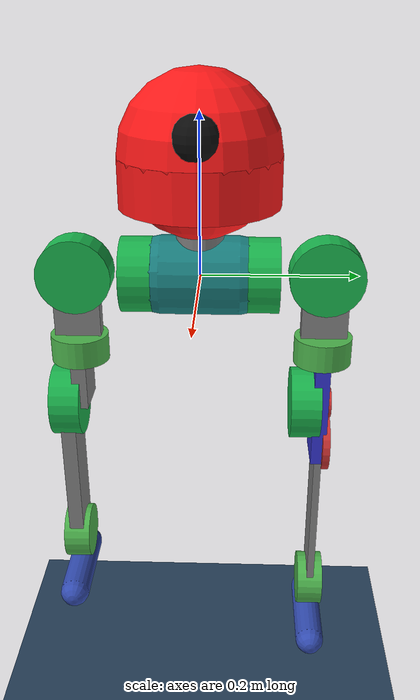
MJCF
<mujoco model="BipeD-prims">
    <compiler angle="radian" meshdir="meshes" autolimits="true"/>

    <default>
        <default class="BD-prims">
            <site group="5" rgba="1 0 0 1"/>

            <default class="visual">
                <geom group="2" type="capsule" size="0.02 0.05" density="0" contype="0" conaffinity="0"/>
            </default>
            <default class="collision">
                <geom group="3" rgba=".2 .6 .2 .3" type="capsule" contype="1" conaffinity="1"/>
            </default>

            <default class="foot_capsule">
                <geom type="capsule" pos="0.015 0 -0.055" size="0.02 0.06" contype="1" conaffinity="1" friction="1.0 0.005 0.0001" condim="4" rgba="1 1 1 1" quat="0.7071 0 0.7071 0" />
            </default>

            <default class="motor_J8006_visual">
                <geom group="2" type="cylinder" size="0.048 0.02" density="0" contype="0" conaffinity="0" rgba="0.1 0.7 0.3 1"/>
            </default>
            <default class="motor_J8006_collision">
                <geom group="3"  type="cylinder" size="0.048 0.02" contype="1" conaffinity="1" rgba=".2 .6 .2 .3"/>
            </default>

            <default class="motor_J6006_visual">
                <geom group="2" type="cylinder" size="0.038 0.018" density="0" contype="0" conaffinity="0" rgba="0.3 0.7 0.3 1"/>
            </default>
            <default class="motor_J6006_collision">
                <geom group="3" type="cylinder" size="0.038 0.018" contype="1" conaffinity="1" rgba=".2 .6 .2 .3"/>
            </default>
        </default>
    </default>

    <asset>
        <texture type="2d" name="grid_tex" builtin="checker" mark="edge" rgb1="0.2 0.3 0.4" rgb2="0.1 0.2 0.3" width="100" height="100"/>
        <material name="grid" texture="grid_tex" texrepeat="1 1" texuniform="true"/>
    </asset>

    <worldbody>
        <geom name="floor" pos="0 0 -0.6" size="0 0 0.05" type="plane" material="grid" condim="3" friction="0.95 0.005 0.0001"/>

        <body name="pelvis" pos="0 0 0" childclass="BD-prims">
            <light pos="0 0 2" mode="trackcom" castshadow="false"/>
            <inertial pos="0 0 0" quat="1 0 0 0" mass="2.0" diaginertia="0.01 0.01 0.01"/>
            <freejoint name="floating_base"/>
            <geom class="visual" type="capsule" size="0.05 0.05" euler="1.57 0 0" rgba="0.1 0.5 0.5 1"/>
            <geom class="collision" type="capsule" size="0.05 0.05" euler="1.57 0 0"/>

            <body name="waist" pos="0 0 0.05">
                <geom class="visual" type="cylinder" size="0.03 0.05"/>
                <body name="head" pos="0 0 0.1">
                    <geom class="visual" type="sphere" size="0.1" rgba="1 0.1 0.1 1"/>
                    <geom class="collision" type="sphere" size="0.1"/>
                    <inertial pos="0 0 0" mass="0.55" diaginertia="0.001 0.001 0.001"/>
                    <geom class="visual" type="cylinder" pos="0 0 -0.03" size="0.1 0.03" rgba="1 0.1 0.1 1"/>
                    <geom class="visual" type="sphere" pos="0.075 0 0.03" size="0.03" rgba="0.05 0.05 0.05 1"/>
                </body>
            </body>

            <body name="left_hip_pitch_link" pos="0 0.08 0">
                <joint name="JL0_hip_pitch" axis="0 1 0" range="-1.57 1.57"/>
                <inertial pos="0 0 0" mass="0.55" diaginertia="0.001 0.0007 0.001"/>
                <geom class="motor_J8006_visual" euler="-1.57 0 0"/>
                <geom class="motor_J8006_collision" euler="-1.57 0 0"/>

                <body name="left_hip_roll_link" pos="0 0.08 0">
                    <inertial pos="0 0 0" mass="0.55" diaginertia="0.0007 0.001 0.001"/>
                    <joint name="JL1_hip_roll" axis="1 0 0" range="-0.785 1.57"/>
                    <geom class="motor_J8006_visual" euler="0 1.57 0"/>
                    <geom class="motor_J8006_collision" euler="0 1.57 0"/>
                    <geom class="visual" type="box" pos="0 0 -0.05" size="0.01 0.03 0.05"/>

                    <body name="left_thigh_yaw_link" pos="0 0 -0.1">
                        <inertial pos="0 0 0" mass="0.55" diaginertia="0.001 0.001 0.0007"/>
                        <joint name="JL2_thigh_yaw" axis="0 0 -1" range="-1.57 1.57"/>
                        <geom class="motor_J6006_visual" euler="3.14 0 0"/>
                        <geom class="motor_J6006_collision" euler="3.14 0 0"/>
                        <geom class="visual" type="box" pos="0 0 -0.08" size="0.03 0.01 0.08" rgba="0.2 0.2 0.8 1"/>

                        <geom class="motor_J8006_visual" euler="-1.57 0 0" pos="0 -0.02 -0.08"/>
                        <geom class="motor_J8006_collision" euler="-1.57 0 0" pos="0 -0.02 -0.08"/>
                        <geom class="visual" type="cylinder" pos="0 0.01 -0.08" size="0.02 0.005" euler="1.57 0 0" rgba="0.8 0.2 0.2 1"/>
                        <geom class="visual" type="cylinder" pos="0 0.01 -0.14" size="0.04 0.005" euler="1.57 0 0" rgba="0.8 0.2 0.2 1"/>

                        <body name="left_knee_pitch_link" pos="0 0 -0.16">
                            <inertial pos="0 0 0" mass="0.55" diaginertia="0.001 0.0007 0.001"/>
                            <joint name="JL3_knee_pitch" axis="0 1 0" range="-1.57 1.57"/>
                            <geom class="visual" type="box" pos="0 0 -0.1" size="0.03 0.005 0.1"/>

                            <body name="left_ankle_pitch_link" pos="0 0 -0.22">
                                <inertial pos="0 0 0" mass="0.55" diaginertia="0.001 0.0007 0.001"/>
                                <joint name="JL4_ankle_pitch" axis="0 -1 0" range="-0.785 0.785"/>
                                <geom class="motor_J6006_visual" euler="1.57 0 0"/>
                                <geom class="motor_J6006_collision" euler="1.57 0 0"/>
                                <geom class="foot_capsule" rgba="0.2 0.3 0.7 1"/>
                            </body>
                        </body>
                    </body>
                </body>
            </body>

            <body name="right_hip_pitch_link" pos="0 -0.08 0">
                <joint name="JR0_hip_pitch" axis="0 -1 0" range="-1.57 1.57"/>
                <inertial pos="0 0 0" mass="0.55" diaginertia="0.001 0.0007 0.001"/>
                <geom class="motor_J8006_visual" euler="1.57 0 0"/>
                <geom class="motor_J8006_collision" euler="1.57 0 0"/>

                <body name="right_hip_roll_link" pos="0 -0.08 0">
                    <inertial pos="0 0 0" mass="0.55" diaginertia="0.0007 0.001 0.001"/>
                    <joint name="JR1_hip_roll" axis="1 0 0" range="-0.785 1.57"/>
                    <geom class="motor_J8006_visual" euler="0 1.57 0"/>
                    <geom class="motor_J8006_collision" euler="0 1.57 0"/>
                    <geom class="visual" type="box" pos="0 0 -0.05" size="0.01 0.03 0.05"/>

                    <body name="right_thigh_yaw_link" pos="0 0 -0.1">
                        <inertial pos="0 0 0" mass="0.55" diaginertia="0.001 0.001 0.0007"/>
                        <joint name="JR2_thigh_yaw" axis="0 0 -1" range="-1.57 1.57"/>
                        <geom class="motor_J6006_visual" euler="3.14 0 0"/>
                        <geom class="motor_J6006_collision" euler="3.14 0 0"/>
                        <geom class="visual" type="box" pos="0 0 -0.04" size="0.03 0.01 0.04"/>

                        <body name="right_knee_pitch_link" pos="0 -0.02 -0.08">
                            <inertial pos="0 0 0" mass="0.55" diaginertia="0.001 0.0007 0.001"/>
                            <joint name="JR3_knee_pitch" axis="0 -1 0" range="-1.57 1.57"/>
                            <geom class="motor_J8006_visual" euler="1.57 0 0"/>
                            <geom class="motor_J8006_collision" euler="1.57 0 0"/>
                            <geom class="visual" type="box" pos="0 0 -0.1" size="0.03 0.01 0.1"/>

                            <body name="right_ankle_pitch_link" pos="0 0 -0.22">
                                <inertial pos="0 0 0" mass="0.55" diaginertia="0.001 0.0007 0.001"/>
                                <joint name="JR4_ankle_pitch" axis="0 1 0" range="-0.785 0.785"/>
                                <geom class="motor_J6006_visual" euler="-1.57 0 0"/>
                                <geom class="motor_J6006_collision" euler="-1.57 0 0"/>
                                <geom class="foot_capsule" rgba="0.2 0.3 0.7 1"/>
                            </body>
                        </body>
                    </body>
                </body>
            </body>

        </body>
    </worldbody>
</mujoco>
